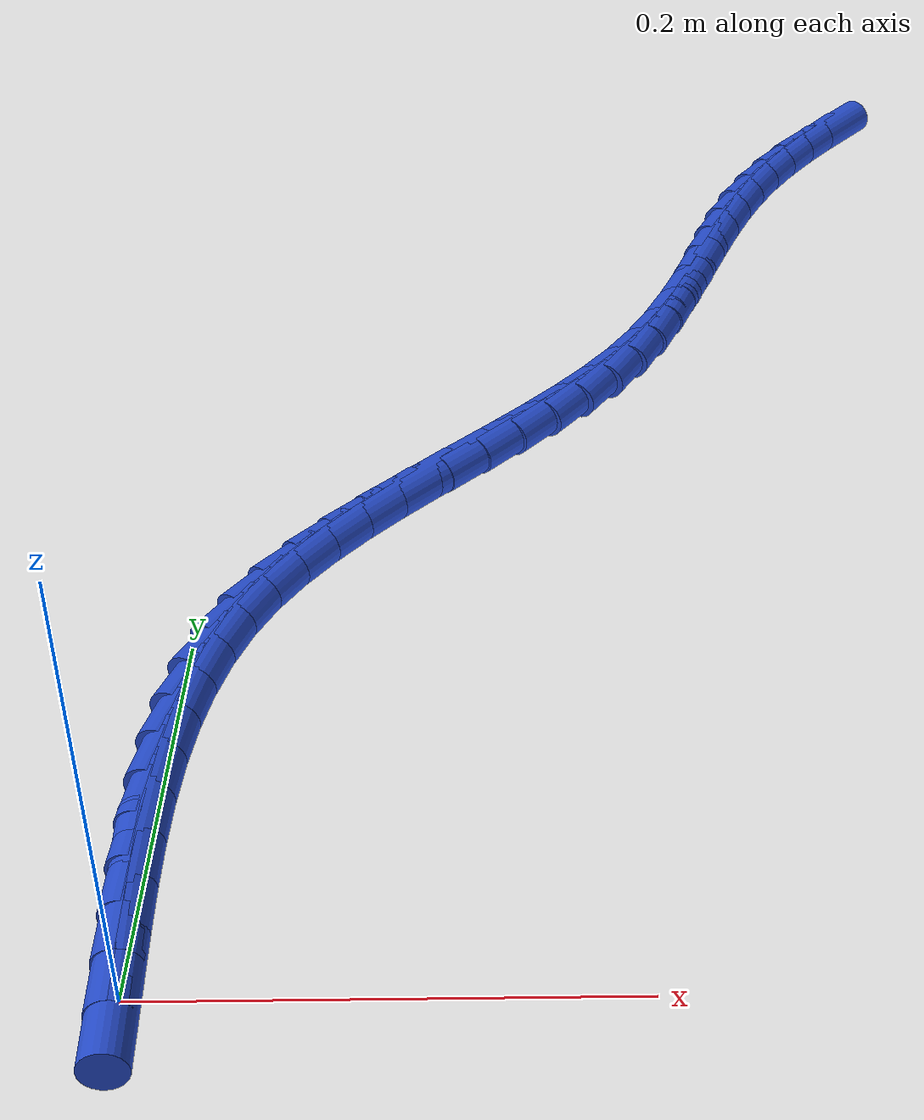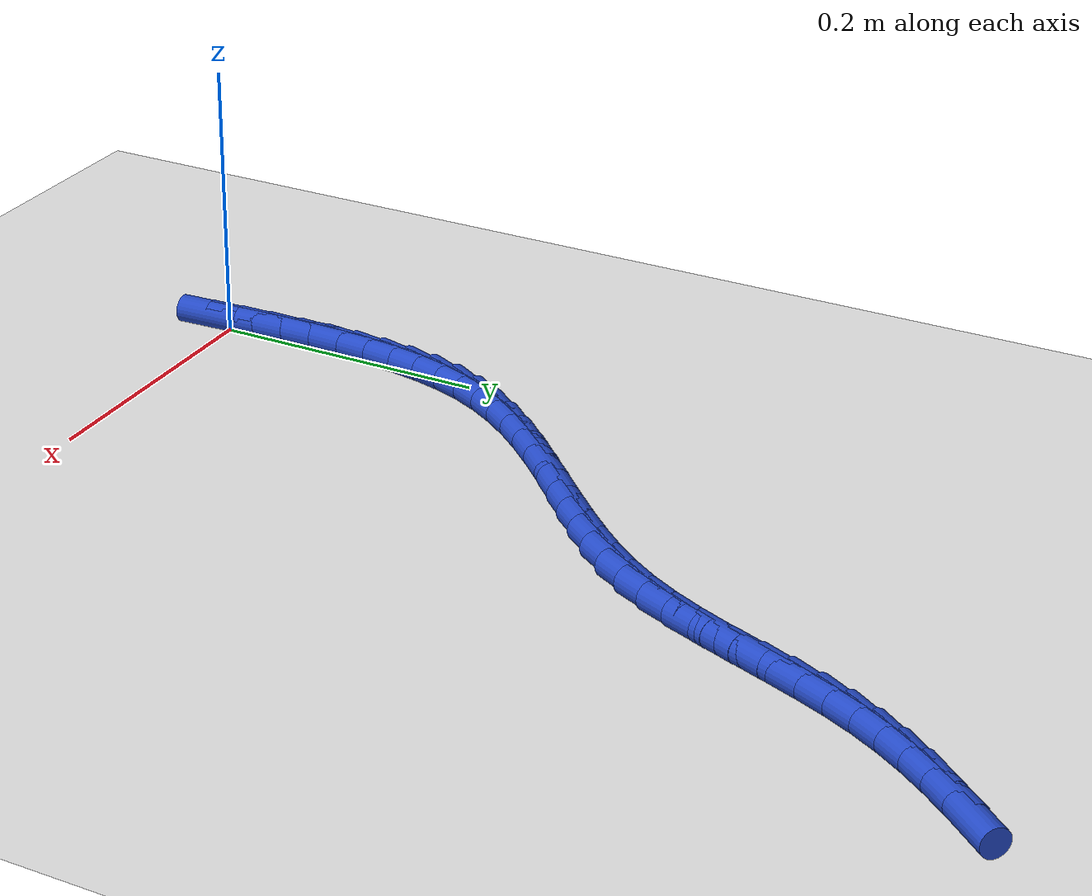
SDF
<sdf version="1.6">
 <world name="default">
  <model name="ground_plane">
   <static>1</static>
   <link name="link">
    <collision name="collision">
     <geometry><plane><normal>0 0 1</normal><size>100 100</size></plane></geometry>
     <surface><friction><ode><mu>100</mu><mu2>50</mu2></ode></friction></surface>
    </collision>
    <visual name="visual">
     <cast_shadows>0</cast_shadows>
     <geometry><plane><normal>0 0 1</normal><size>100 100</size></plane></geometry>
     <material>
      <script><uri>file://media/materials/scripts/gazebo.material</uri><name>Gazebo/WhiteGlow</name></script>
     </material>
    </visual>
   </link>
  </model>
  <model name="line">
   <link name="link_0">
    <pose>-8.673617379884035e-19 6.938893903907228e-18 0.01 0 1.57 -1.5246301149782158</pose>
    <collision name="collision">
     <geometry><cylinder><radius>0.01</radius><length>0.08</length></cylinder></geometry>
    </collision>
    <visual name="visual">
     <material>
      <script><name>Gazebo/Blue</name><uri>file://media/materials/scripts/gazebo.material</uri></script>
     </material>
     <geometry><cylinder><radius>0.01</radius><length>0.08</length></cylinder></geometry>
    </visual>
   </link>
   <link name="link_1">
    <pose>-0.0011001443735072457 0.02381314456885705 0.01 0 1.57 -1.5374210759758733</pose>
    <collision name="collision">
     <geometry><cylinder><radius>0.01</radius><length>0.08</length></cylinder></geometry>
    </collision>
    <visual name="visual">
     <material>
      <script><name>Gazebo/Blue</name><uri>file://media/materials/scripts/gazebo.material</uri></script>
     </material>
     <geometry><cylinder><radius>0.01</radius><length>0.08</length></cylinder></geometry>
    </visual>
   </link>
   <link name="link_2">
    <pose>-0.00189906913369826 0.04774189643846767 0.01 0 1.57 -1.5593118271903437</pose>
    <collision name="collision">
     <geometry><cylinder><radius>0.01</radius><length>0.08</length></cylinder></geometry>
    </collision>
    <visual name="visual">
     <material>
      <script><name>Gazebo/Blue</name><uri>file://media/materials/scripts/gazebo.material</uri></script>
     </material>
     <geometry><cylinder><radius>0.01</radius><length>0.08</length></cylinder></geometry>
    </visual>
   </link>
   <link name="link_3">
    <pose>-0.002173610051218639 0.0716461897722483 0.01 0 1.57 1.5508742889381562</pose>
    <collision name="collision">
     <geometry><cylinder><radius>0.01</radius><length>0.08</length></cylinder></geometry>
    </collision>
    <visual name="visual">
     <material>
      <script><name>Gazebo/Blue</name><uri>file://media/materials/scripts/gazebo.material</uri></script>
     </material>
     <geometry><cylinder><radius>0.01</radius><length>0.08</length></cylinder></geometry>
    </visual>
   </link>
   <link name="link_4">
    <pose>-0.0017006028967139755 0.09538595873361543 0.01 0 1.57 1.509269284869773</pose>
    <collision name="collision">
     <geometry><cylinder><radius>0.01</radius><length>0.08</length></cylinder></geometry>
    </collision>
    <visual name="visual">
     <material>
      <script><name>Gazebo/Blue</name><uri>file://media/materials/scripts/gazebo.material</uri></script>
     </material>
     <geometry><cylinder><radius>0.01</radius><length>0.08</length></cylinder></geometry>
    </visual>
   </link>
   <link name="link_5">
    <pose>-0.0002568834408298651 0.11882113748598544 0.01 0 1.57 1.4565703640862406</pose>
    <collision name="collision">
     <geometry><cylinder><radius>0.01</radius><length>0.08</length></cylinder></geometry>
    </collision>
    <visual name="visual">
     <material>
      <script><name>Gazebo/Blue</name><uri>file://media/materials/scripts/gazebo.material</uri></script>
     </material>
     <geometry><cylinder><radius>0.01</radius><length>0.08</length></cylinder></geometry>
    </visual>
   </link>
   <link name="link_6">
    <pose>0.002380712545788097 0.14181166019277477 0.01 0 1.57 1.3917700840922864</pose>
    <collision name="collision">
     <geometry><cylinder><radius>0.01</radius><length>0.08</length></cylinder></geometry>
    </collision>
    <visual name="visual">
     <material>
      <script><name>Gazebo/Blue</name><uri>file://media/materials/scripts/gazebo.material</uri></script>
     </material>
     <geometry><cylinder><radius>0.01</radius><length>0.08</length></cylinder></geometry>
    </visual>
   </link>
   <link name="link_7">
    <pose>0.006435349292494319 0.16421746101739998 0.01 0 1.57 1.3139337070165626</pose>
    <collision name="collision">
     <geometry><cylinder><radius>0.01</radius><length>0.08</length></cylinder></geometry>
    </collision>
    <visual name="visual">
     <material>
      <script><name>Gazebo/Blue</name><uri>file://media/materials/scripts/gazebo.material</uri></script>
     </material>
     <geometry><cylinder><radius>0.01</radius><length>0.08</length></cylinder></geometry>
    </visual>
   </link>
   <link name="link_8">
    <pose>0.012130191028643203 0.18589847412327737 0.01 0 1.57 1.2225049243105828</pose>
    <collision name="collision">
     <geometry><cylinder><radius>0.01</radius><length>0.08</length></cylinder></geometry>
    </collision>
    <visual name="visual">
     <material>
      <script><name>Gazebo/Blue</name><uri>file://media/materials/scripts/gazebo.material</uri></script>
     </material>
     <geometry><cylinder><radius>0.01</radius><length>0.08</length></cylinder></geometry>
    </visual>
   </link>
   <link name="link_9">
    <pose>0.019688401983589152 0.20671463367382342 0.01 0 1.57 1.1187030326941942</pose>
    <collision name="collision">
     <geometry><cylinder><radius>0.01</radius><length>0.08</length></cylinder></geometry>
    </collision>
    <visual name="visual">
     <material>
      <script><name>Gazebo/Blue</name><uri>file://media/materials/scripts/gazebo.material</uri></script>
     </material>
     <geometry><cylinder><radius>0.01</radius><length>0.08</length></cylinder></geometry>
    </visual>
   </link>
   <link name="link_10">
    <pose>0.029314615154590298 0.22653636264551447 0.01 0 1.57 1.0190187588300657</pose>
    <collision name="collision">
     <geometry><cylinder><radius>0.01</radius><length>0.08</length></cylinder></geometry>
    </collision>
    <visual name="visual">
     <material>
      <script><name>Gazebo/Blue</name><uri>file://media/materials/scripts/gazebo.material</uri></script>
     </material>
     <geometry><cylinder><radius>0.01</radius><length>0.08</length></cylinder></geometry>
    </visual>
   </link>
   <link name="link_11">
    <pose>0.04092467999508773 0.24539753761521904 0.01 0 1.57 0.9368000062690974</pose>
    <collision name="collision">
     <geometry><cylinder><radius>0.01</radius><length>0.08</length></cylinder></geometry>
    </collision>
    <visual name="visual">
     <material>
      <script><name>Gazebo/Blue</name><uri>file://media/materials/scripts/gazebo.material</uri></script>
     </material>
     <geometry><cylinder><radius>0.01</radius><length>0.08</length></cylinder></geometry>
    </visual>
   </link>
   <link name="link_12">
    <pose>0.05420610657575608 0.2634612769224467 0.01 0 1.57 0.8724598786086498</pose>
    <collision name="collision">
     <geometry><cylinder><radius>0.01</radius><length>0.08</length></cylinder></geometry>
    </collision>
    <visual name="visual">
     <material>
      <script><name>Gazebo/Blue</name><uri>file://media/materials/scripts/gazebo.material</uri></script>
     </material>
     <geometry><cylinder><radius>0.01</radius><length>0.08</length></cylinder></geometry>
    </visual>
   </link>
   <link name="link_13">
    <pose>0.06884017195413805 0.2808942268377802 0.01 0 1.57 0.8252347236240744</pose>
    <collision name="collision">
     <geometry><cylinder><radius>0.01</radius><length>0.08</length></cylinder></geometry>
    </collision>
    <visual name="visual">
     <material>
      <script><name>Gazebo/Blue</name><uri>file://media/materials/scripts/gazebo.material</uri></script>
     </material>
     <geometry><cylinder><radius>0.01</radius><length>0.08</length></cylinder></geometry>
    </visual>
   </link>
   <link name="link_14">
    <pose>0.08450815318777634 0.29786303363180217 0.01 0 1.57 0.7941149383532964</pose>
    <collision name="collision">
     <geometry><cylinder><radius>0.01</radius><length>0.08</length></cylinder></geometry>
    </collision>
    <visual name="visual">
     <material>
      <script><name>Gazebo/Blue</name><uri>file://media/materials/scripts/gazebo.material</uri></script>
     </material>
     <geometry><cylinder><radius>0.01</radius><length>0.08</length></cylinder></geometry>
    </visual>
   </link>
   <link name="link_15">
    <pose>0.10089132733421366 0.3145343435750956 0.01 0 1.57 0.7782198950117848</pose>
    <collision name="collision">
     <geometry><cylinder><radius>0.01</radius><length>0.08</length></cylinder></geometry>
    </collision>
    <visual name="visual">
     <material>
      <script><name>Gazebo/Blue</name><uri>file://media/materials/scripts/gazebo.material</uri></script>
     </material>
     <geometry><cylinder><radius>0.01</radius><length>0.08</length></cylinder></geometry>
    </visual>
   </link>
   <link name="link_16">
    <pose>0.11767097145099276 0.33107480293824315 0.01 0 1.57 0.7769895841014264</pose>
    <collision name="collision">
     <geometry><cylinder><radius>0.01</radius><length>0.08</length></cylinder></geometry>
    </collision>
    <visual name="visual">
     <material>
      <script><name>Gazebo/Blue</name><uri>file://media/materials/scripts/gazebo.material</uri></script>
     </material>
     <geometry><cylinder><radius>0.01</radius><length>0.08</length></cylinder></geometry>
    </visual>
   </link>
   <link name="link_17">
    <pose>0.13452836259565634 0.3476510579918277 0.01 0 1.57 0.790257572341971</pose>
    <collision name="collision">
     <geometry><cylinder><radius>0.01</radius><length>0.08</length></cylinder></geometry>
    </collision>
    <visual name="visual">
     <material>
      <script><name>Gazebo/Blue</name><uri>file://media/materials/scripts/gazebo.material</uri></script>
     </material>
     <geometry><cylinder><radius>0.01</radius><length>0.08</length></cylinder></geometry>
    </visual>
   </link>
   <link name="link_18">
    <pose>0.1511447778257471 0.3644297550064319 0.01 0 1.57 0.8182454097606433</pose>
    <collision name="collision">
     <geometry><cylinder><radius>0.01</radius><length>0.08</length></cylinder></geometry>
    </collision>
    <visual name="visual">
     <material>
      <script><name>Gazebo/Blue</name><uri>file://media/materials/scripts/gazebo.material</uri></script>
     </material>
     <geometry><cylinder><radius>0.01</radius><length>0.08</length></cylinder></geometry>
    </visual>
   </link>
   <link name="link_19">
    <pose>0.16720149419880778 0.3815775402526387 0.01 0 1.57 0.8614861333797638</pose>
    <collision name="collision">
     <geometry><cylinder><radius>0.01</radius><length>0.08</length></cylinder></geometry>
    </collision>
    <visual name="visual">
     <material>
      <script><name>Gazebo/Blue</name><uri>file://media/materials/scripts/gazebo.material</uri></script>
     </material>
     <geometry><cylinder><radius>0.01</radius><length>0.08</length></cylinder></geometry>
    </visual>
   </link>
   <link name="link_20">
    <pose>0.18237978877238106 0.39926106000103073 0.01 0 1.57 0.9206547636802748</pose>
    <collision name="collision">
     <geometry><cylinder><radius>0.01</radius><length>0.08</length></cylinder></geometry>
    </collision>
    <visual name="visual">
     <material>
      <script><name>Gazebo/Blue</name><uri>file://media/materials/scripts/gazebo.material</uri></script>
     </material>
     <geometry><cylinder><radius>0.01</radius><length>0.08</length></cylinder></geometry>
    </visual>
   </link>
   <link name="link_21">
    <pose>0.19636093860400966 0.4176469605221909 0.01 0 1.57 0.9961611812305781</pose>
    <collision name="collision">
     <geometry><cylinder><radius>0.01</radius><length>0.08</length></cylinder></geometry>
    </collision>
    <visual name="visual">
     <material>
      <script><name>Gazebo/Blue</name><uri>file://media/materials/scripts/gazebo.material</uri></script>
     </material>
     <geometry><cylinder><radius>0.01</radius><length>0.08</length></cylinder></geometry>
    </visual>
   </link>
   <link name="link_22">
    <pose>0.20882829171628223 0.4369007410874593 0.01 0 1.57 1.076708419460473</pose>
    <collision name="collision">
     <geometry><cylinder><radius>0.01</radius><length>0.08</length></cylinder></geometry>
    </collision>
    <visual name="visual">
     <material>
      <script><name>Gazebo/Blue</name><uri>file://media/materials/scripts/gazebo.material</uri></script>
     </material>
     <geometry><cylinder><radius>0.01</radius><length>0.08</length></cylinder></geometry>
    </visual>
   </link>
   <link name="link_23">
    <pose>0.21968916532211782 0.45706385614562334 0.01 0 1.57 1.1405268804972584</pose>
    <collision name="collision">
     <geometry><cylinder><radius>0.01</radius><length>0.08</length></cylinder></geometry>
    </collision>
    <visual name="visual">
     <material>
      <script><name>Gazebo/Blue</name><uri>file://media/materials/scripts/gazebo.material</uri></script>
     </material>
     <geometry><cylinder><radius>0.01</radius><length>0.08</length></cylinder></geometry>
    </visual>
   </link>
   <link name="link_24">
    <pose>0.2292722296930821 0.4779443947200074 0.01 0 1.57 1.1851242442502838</pose>
    <collision name="collision">
     <geometry><cylinder><radius>0.01</radius><length>0.08</length></cylinder></geometry>
    </collision>
    <visual name="visual">
     <material>
      <script><name>Gazebo/Blue</name><uri>file://media/materials/scripts/gazebo.material</uri></script>
     </material>
     <geometry><cylinder><radius>0.01</radius><length>0.08</length></cylinder></geometry>
    </visual>
   </link>
   <link name="link_25">
    <pose>0.23795271657178255 0.499324657869954 0.01 0 1.57 1.2108208360700574</pose>
    <collision name="collision">
     <geometry><cylinder><radius>0.01</radius><length>0.08</length></cylinder></geometry>
    </collision>
    <visual name="visual">
     <material>
      <script><name>Gazebo/Blue</name><uri>file://media/materials/scripts/gazebo.material</uri></script>
     </material>
     <geometry><cylinder><radius>0.01</radius><length>0.08</length></cylinder></geometry>
    </visual>
   </link>
   <link name="link_26">
    <pose>0.24610585770082669 0.520986946654806 0.01 0 1.57 1.2179484116636439</pose>
    <collision name="collision">
     <geometry><cylinder><radius>0.01</radius><length>0.08</length></cylinder></geometry>
    </collision>
    <visual name="visual">
     <material>
      <script><name>Gazebo/Blue</name><uri>file://media/materials/scripts/gazebo.material</uri></script>
     </material>
     <geometry><cylinder><radius>0.01</radius><length>0.08</length></cylinder></geometry>
    </visual>
   </link>
   <link name="link_27">
    <pose>0.2541068848228222 0.5427135621339064 0.01 0 1.57 1.2065839684980628</pose>
    <collision name="collision">
     <geometry><cylinder><radius>0.01</radius><length>0.08</length></cylinder></geometry>
    </collision>
    <visual name="visual">
     <material>
      <script><name>Gazebo/Blue</name><uri>file://media/materials/scripts/gazebo.material</uri></script>
     </material>
     <geometry><cylinder><radius>0.01</radius><length>0.08</length></cylinder></geometry>
    </visual>
   </link>
   <link name="link_28">
    <pose>0.26233102968037636 0.5642868053665977 0.01 0 1.57 1.176477267388566</pose>
    <collision name="collision">
     <geometry><cylinder><radius>0.01</radius><length>0.08</length></cylinder></geometry>
    </collision>
    <visual name="visual">
     <material>
      <script><name>Gazebo/Blue</name><uri>file://media/materials/scripts/gazebo.material</uri></script>
     </material>
     <geometry><cylinder><radius>0.01</radius><length>0.08</length></cylinder></geometry>
    </visual>
   </link>
   <link name="link_29">
    <pose>0.2711535240160968 0.5854889774122227 0.01 0 1.57 1.127161591847886</pose>
    <collision name="collision">
     <geometry><cylinder><radius>0.01</radius><length>0.08</length></cylinder></geometry>
    </collision>
    <visual name="visual">
     <material>
      <script><name>Gazebo/Blue</name><uri>file://media/materials/scripts/gazebo.material</uri></script>
     </material>
     <geometry><cylinder><radius>0.01</radius><length>0.08</length></cylinder></geometry>
    </visual>
   </link>
   <link name="link_30">
    <pose>0.2809495995725911 0.6061023793301241 0.01 0 1.57 1.061831958757235</pose>
    <collision name="collision">
     <geometry><cylinder><radius>0.01</radius><length>0.08</length></cylinder></geometry>
    </collision>
    <visual name="visual">
     <material>
      <script><name>Gazebo/Blue</name><uri>file://media/materials/scripts/gazebo.material</uri></script>
     </material>
     <geometry><cylinder><radius>0.01</radius><length>0.08</length></cylinder></geometry>
    </visual>
   </link>
   <link name="link_31">
    <pose>0.29202459085986376 0.6259500396720835 0.01 0 1.57 0.9988459904425757</pose>
    <collision name="collision">
     <geometry><cylinder><radius>0.01</radius><length>0.08</length></cylinder></geometry>
    </collision>
    <visual name="visual">
     <material>
      <script><name>Gazebo/Blue</name><uri>file://media/materials/scripts/gazebo.material</uri></script>
     </material>
     <geometry><cylinder><radius>0.01</radius><length>0.08</length></cylinder></geometry>
    </visual>
   </link>
   <link name="link_32">
    <pose>0.3043277225309878 0.6450624839245311 0.01 0 1.57 0.9444124546212812</pose>
    <collision name="collision">
     <geometry><cylinder><radius>0.01</radius><length>0.08</length></cylinder></geometry>
    </collision>
    <visual name="visual">
     <material>
      <script><name>Gazebo/Blue</name><uri>file://media/materials/scripts/gazebo.material</uri></script>
     </material>
     <geometry><cylinder><radius>0.01</radius><length>0.08</length></cylinder></geometry>
    </visual>
   </link>
   <link name="link_33">
    <pose>0.3176950976063015 0.6635361509193938 0.01 0 1.57 0.8986932509911858</pose>
    <collision name="collision">
     <geometry><cylinder><radius>0.01</radius><length>0.08</length></cylinder></geometry>
    </collision>
    <visual name="visual">
     <material>
      <script><name>Gazebo/Blue</name><uri>file://media/materials/scripts/gazebo.material</uri></script>
     </material>
     <geometry><cylinder><radius>0.01</radius><length>0.08</length></cylinder></geometry>
    </visual>
   </link>
   <link name="link_34">
    <pose>0.33196277250657735 0.6814675066410825 0.01 0 1.57 0.8616279497944331</pose>
    <collision name="collision">
     <geometry><cylinder><radius>0.01</radius><length>0.08</length></cylinder></geometry>
    </collision>
    <visual name="visual">
     <material>
      <script><name>Gazebo/Blue</name><uri>file://media/materials/scripts/gazebo.material</uri></script>
     </material>
     <geometry><cylinder><radius>0.01</radius><length>0.08</length></cylinder></geometry>
    </visual>
   </link>
   <link name="link_291">
    <pose>-0.0011479633928232072 0.023840314398986352 0.01 0 1.57 -1.5238280886153661</pose>
    <collision name="collision">
     <geometry><cylinder><radius>0.01</radius><length>0.08</length></cylinder></geometry>
    </collision>
    <visual name="visual">
     <material>
      <script><name>Gazebo/Blue</name><uri>file://media/materials/scripts/gazebo.material</uri></script>
     </material>
     <geometry><cylinder><radius>0.01</radius><length>0.08</length></cylinder></geometry>
    </visual>
   </link>
   <link name="link_292">
    <pose>-0.0022816212882262607 0.04795925507950852 0.01 0 1.57 -1.5232580093939596</pose>
    <collision name="collision">
     <geometry><cylinder><radius>0.01</radius><length>0.08</length></cylinder></geometry>
    </collision>
    <visual name="visual">
     <material>
      <script><name>Gazebo/Blue</name><uri>file://media/materials/scripts/gazebo.material</uri></script>
     </material>
     <geometry><cylinder><radius>0.01</radius><length>0.08</length></cylinder></geometry>
    </visual>
   </link>
  </model>
 </world>
</sdf>
